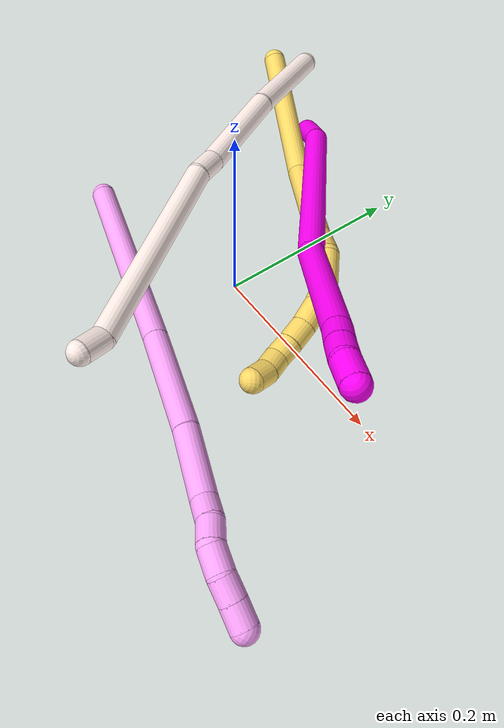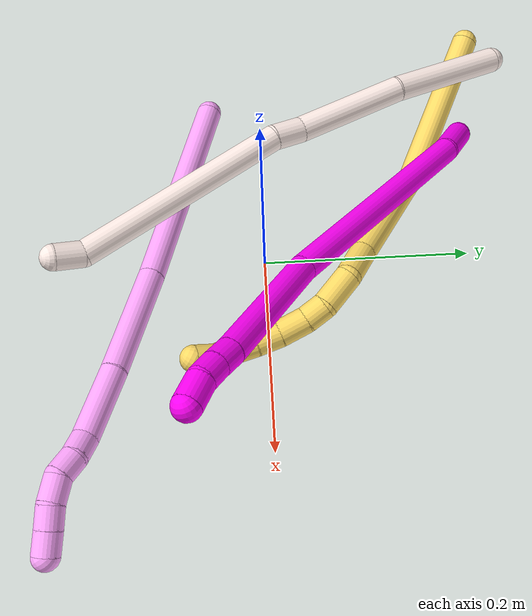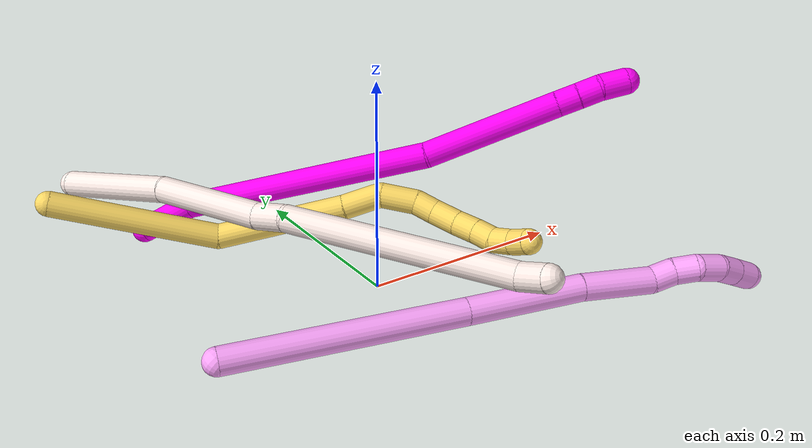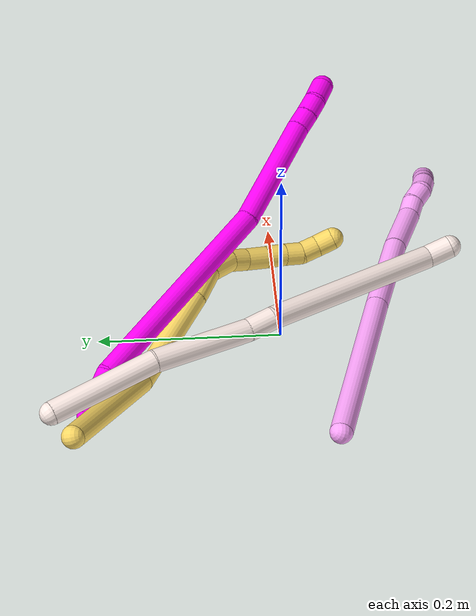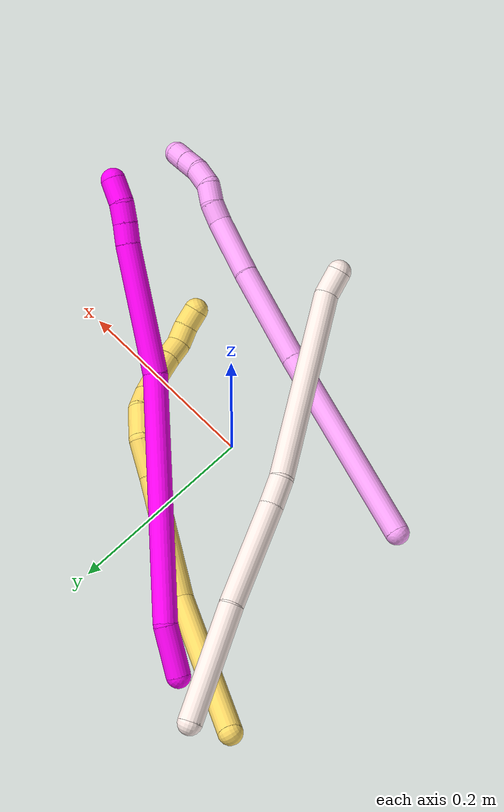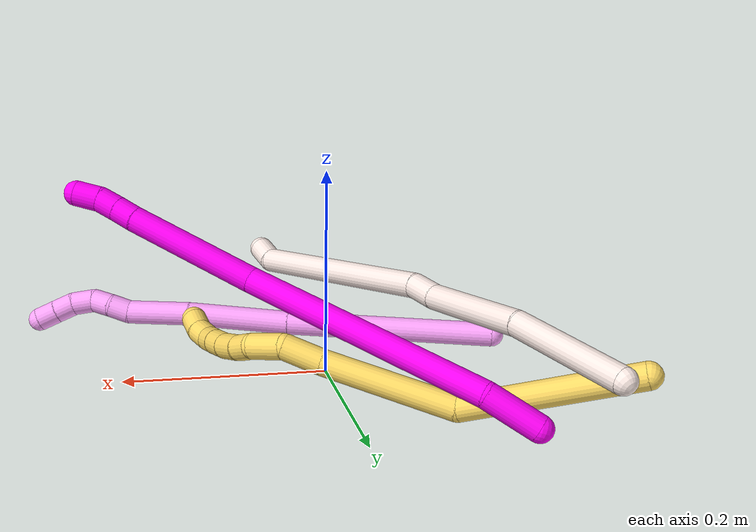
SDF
<sdf version="1.7">
 <world name="default">
  <model name="4">
   <static>0</static>
   <link name="4">
    <collision name="collision-cylinder-e_1_1_4">
     <pose>0.093295 0.011278 0.053296 -0.208542 1.04229 -0.120012</pose>
     <geometry><cylinder><radius>0.0125</radius><length>0.21607</length></cylinder></geometry>
     <surface>
      <friction><ode><mu>1.16</mu><mu2>1.16</mu2><slip1>0</slip1><slip2>0</slip2></ode></friction>
      <contact><ode><kp>1e+06</kp><kd>1</kd><max_vel>0</max_vel><min_depth>0.001</min_depth></ode></contact>
     </surface>
    </collision>
    <visual name="visual-cylinder-e_1_1_4">
     <pose>0.093295 0.011278 0.053296 -0.208542 1.04229 -0.120012</pose>
     <geometry><cylinder><radius>0.0125</radius><length>0.21607</length></cylinder></geometry>
     <material><ambient>1 0.65098 0.996078 1</ambient></material>
    </visual>
    <collision name="collision-cylinder-e_2_4_5">
     <pose>0.232696 0.030049 0.133267 -0.273791 1.02968 -0.155552</pose>
     <geometry><cylinder><radius>0.0125</radius><length>0.107584</length></cylinder></geometry>
     <surface>
      <friction><ode><mu>1.16</mu><mu2>1.16</mu2><slip1>0</slip1><slip2>0</slip2></ode></friction>
      <contact><ode><kp>1e+06</kp><kd>1</kd><max_vel>0</max_vel><min_depth>0.001</min_depth></ode></contact>
     </surface>
    </collision>
    <visual name="visual-cylinder-e_2_4_5">
     <pose>0.232696 0.030049 0.133267 -0.273791 1.02968 -0.155552</pose>
     <geometry><cylinder><radius>0.0125</radius><length>0.107584</length></cylinder></geometry>
     <material><ambient>1 0.65098 0.996078 1</ambient></material>
    </visual>
    <collision name="collision-cylinder-e_3_5_6">
     <pose>0.306263 0.041008 0.17919 -0.178263 0.951941 -0.092073</pose>
     <geometry><cylinder><radius>0.0125</radius><length>0.067424</length></cylinder></geometry>
     <surface>
      <friction><ode><mu>1.16</mu><mu2>1.16</mu2><slip1>0</slip1><slip2>0</slip2></ode></friction>
      <contact><ode><kp>1e+06</kp><kd>1</kd><max_vel>0</max_vel><min_depth>0.001</min_depth></ode></contact>
     </surface>
    </collision>
    <visual name="visual-cylinder-e_3_5_6">
     <pose>0.306263 0.041008 0.17919 -0.178263 0.951941 -0.092073</pose>
     <geometry><cylinder><radius>0.0125</radius><length>0.067424</length></cylinder></geometry>
     <material><ambient>1 0.65098 0.996078 1</ambient></material>
    </visual>
    <collision name="collision-cylinder-e_4_6_7">
     <pose>0.342868 0.048306 0.202809 -0.71936 1.00461 -0.407386</pose>
     <geometry><cylinder><radius>0.0125</radius><length>0.021672</length></cylinder></geometry>
     <surface>
      <friction><ode><mu>1.16</mu><mu2>1.16</mu2><slip1>0</slip1><slip2>0</slip2></ode></friction>
      <contact><ode><kp>1e+06</kp><kd>1</kd><max_vel>0</max_vel><min_depth>0.001</min_depth></ode></contact>
     </surface>
    </collision>
    <visual name="visual-cylinder-e_4_6_7">
     <pose>0.342868 0.048306 0.202809 -0.71936 1.00461 -0.407386</pose>
     <geometry><cylinder><radius>0.0125</radius><length>0.021672</length></cylinder></geometry>
     <material><ambient>1 0.65098 0.996078 1</ambient></material>
    </visual>
    <collision name="collision-cylinder-e_5_7_8">
     <pose>0.359618 0.056099 0.213673 -0.548149 0.785317 -0.231841</pose>
     <geometry><cylinder><radius>0.0125</radius><length>0.021511</length></cylinder></geometry>
     <surface>
      <friction><ode><mu>1.16</mu><mu2>1.16</mu2><slip1>0</slip1><slip2>0</slip2></ode></friction>
      <contact><ode><kp>1e+06</kp><kd>1</kd><max_vel>0</max_vel><min_depth>0.001</min_depth></ode></contact>
     </surface>
    </collision>
    <visual name="visual-cylinder-e_5_7_8">
     <pose>0.359618 0.056099 0.213673 -0.548149 0.785317 -0.231841</pose>
     <geometry><cylinder><radius>0.0125</radius><length>0.021511</length></cylinder></geometry>
     <material><ambient>1 0.65098 0.996078 1</ambient></material>
    </visual>
    <collision name="collision-cylinder-e_6_8_9">
     <pose>0.376875 0.059056 0.226956 0.147217 0.952536 0.076047</pose>
     <geometry><cylinder><radius>0.0125</radius><length>0.02369</length></cylinder></geometry>
     <surface>
      <friction><ode><mu>1.16</mu><mu2>1.16</mu2><slip1>0</slip1><slip2>0</slip2></ode></friction>
      <contact><ode><kp>1e+06</kp><kd>1</kd><max_vel>0</max_vel><min_depth>0.001</min_depth></ode></contact>
     </surface>
    </collision>
    <visual name="visual-cylinder-e_6_8_9">
     <pose>0.376875 0.059056 0.226956 0.147217 0.952536 0.076047</pose>
     <geometry><cylinder><radius>0.0125</radius><length>0.02369</length></cylinder></geometry>
     <material><ambient>1 0.65098 0.996078 1</ambient></material>
    </visual>
    <collision name="collision-cylinder-e_7_9_10">
     <pose>0.394375 0.054414 0.239543 0.560124 0.853819 0.260192</pose>
     <geometry><cylinder><radius>0.0125</radius><length>0.020823</length></cylinder></geometry>
     <surface>
      <friction><ode><mu>1.16</mu><mu2>1.16</mu2><slip1>0</slip1><slip2>0</slip2></ode></friction>
      <contact><ode><kp>1e+06</kp><kd>1</kd><max_vel>0</max_vel><min_depth>0.001</min_depth></ode></contact>
     </surface>
    </collision>
    <visual name="visual-cylinder-e_7_9_10">
     <pose>0.394375 0.054414 0.239543 0.560124 0.853819 0.260192</pose>
     <geometry><cylinder><radius>0.0125</radius><length>0.020823</length></cylinder></geometry>
     <material><ambient>1 0.65098 0.996078 1</ambient></material>
    </visual>
    <collision name="collision-cylinder-e_8_10_2">
     <pose>0.410061 0.047081 0.251465 0.543004 0.830895 0.244373</pose>
     <geometry><cylinder><radius>0.0125</radius><length>0.021227</length></cylinder></geometry>
     <surface>
      <friction><ode><mu>1.16</mu><mu2>1.16</mu2><slip1>0</slip1><slip2>0</slip2></ode></friction>
      <contact><ode><kp>1e+06</kp><kd>1</kd><max_vel>0</max_vel><min_depth>0.001</min_depth></ode></contact>
     </surface>
    </collision>
    <visual name="visual-cylinder-e_8_10_2">
     <pose>0.410061 0.047081 0.251465 0.543004 0.830895 0.244373</pose>
     <geometry><cylinder><radius>0.0125</radius><length>0.021227</length></cylinder></geometry>
     <material><ambient>1 0.65098 0.996078 1</ambient></material>
    </visual>
    <collision name="collision-sphere-2">
     <pose>0.4179 0.043384 0.257592 0 -0 0</pose>
     <geometry><sphere><radius>0.0125</radius></sphere></geometry>
     <surface>
      <friction><ode><mu>1.16</mu><mu2>1.16</mu2><slip1>0</slip1><slip2>0</slip2></ode></friction>
      <contact><ode><kp>1e+06</kp><kd>1</kd><max_vel>0</max_vel><min_depth>0.001</min_depth></ode></contact>
     </surface>
    </collision>
    <visual name="visual-sphere-2">
     <pose>0.4179 0.043384 0.257592 0 -0 0</pose>
     <geometry><sphere><radius>0.0125</radius></sphere></geometry>
     <material><ambient>1 0.65098 0.996078 1</ambient></material>
    </visual>
    <collision name="collision-sphere-10">
     <pose>0.402223 0.050779 0.245339 0 -0 0</pose>
     <geometry><sphere><radius>0.0125</radius></sphere></geometry>
     <surface>
      <friction><ode><mu>1.16</mu><mu2>1.16</mu2><slip1>0</slip1><slip2>0</slip2></ode></friction>
      <contact><ode><kp>1e+06</kp><kd>1</kd><max_vel>0</max_vel><min_depth>0.001</min_depth></ode></contact>
     </surface>
    </collision>
    <visual name="visual-sphere-10">
     <pose>0.402223 0.050779 0.245339 0 -0 0</pose>
     <geometry><sphere><radius>0.0125</radius></sphere></geometry>
     <material><ambient>1 0.65098 0.996078 1</ambient></material>
    </visual>
    <collision name="collision-sphere-9">
     <pose>0.386527 0.058048 0.233747 0 -0 0</pose>
     <geometry><sphere><radius>0.0125</radius></sphere></geometry>
     <surface>
      <friction><ode><mu>1.16</mu><mu2>1.16</mu2><slip1>0</slip1><slip2>0</slip2></ode></friction>
      <contact><ode><kp>1e+06</kp><kd>1</kd><max_vel>0</max_vel><min_depth>0.001</min_depth></ode></contact>
     </surface>
    </collision>
    <visual name="visual-sphere-9">
     <pose>0.386527 0.058048 0.233747 0 -0 0</pose>
     <geometry><sphere><radius>0.0125</radius></sphere></geometry>
     <material><ambient>1 0.65098 0.996078 1</ambient></material>
    </visual>
    <collision name="collision-sphere-4">
     <pose>0.186589 0.022557 0.106591 0 -0 0</pose>
     <geometry><sphere><radius>0.0125</radius></sphere></geometry>
     <surface>
      <friction><ode><mu>1.16</mu><mu2>1.16</mu2><slip1>0</slip1><slip2>0</slip2></ode></friction>
      <contact><ode><kp>1e+06</kp><kd>1</kd><max_vel>0</max_vel><min_depth>0.001</min_depth></ode></contact>
     </surface>
    </collision>
    <visual name="visual-sphere-4">
     <pose>0.186589 0.022557 0.106591 0 -0 0</pose>
     <geometry><sphere><radius>0.0125</radius></sphere></geometry>
     <material><ambient>1 0.65098 0.996078 1</ambient></material>
    </visual>
    <collision name="collision-sphere-1">
     <geometry><sphere><radius>0.0125</radius></sphere></geometry>
     <surface>
      <friction><ode><mu>1.16</mu><mu2>1.16</mu2><slip1>0</slip1><slip2>0</slip2></ode></friction>
      <contact><ode><kp>1e+06</kp><kd>1</kd><max_vel>0</max_vel><min_depth>0.001</min_depth></ode></contact>
     </surface>
    </collision>
    <visual name="visual-sphere-1">
     <geometry><sphere><radius>0.0125</radius></sphere></geometry>
     <material><ambient>1 0.65098 0.996078 1</ambient></material>
    </visual>
    <collision name="collision-sphere-8">
     <pose>0.367222 0.060063 0.220164 0 -0 0</pose>
     <geometry><sphere><radius>0.0125</radius></sphere></geometry>
     <surface>
      <friction><ode><mu>1.16</mu><mu2>1.16</mu2><slip1>0</slip1><slip2>0</slip2></ode></friction>
      <contact><ode><kp>1e+06</kp><kd>1</kd><max_vel>0</max_vel><min_depth>0.001</min_depth></ode></contact>
     </surface>
    </collision>
    <visual name="visual-sphere-8">
     <pose>0.367222 0.060063 0.220164 0 -0 0</pose>
     <geometry><sphere><radius>0.0125</radius></sphere></geometry>
     <material><ambient>1 0.65098 0.996078 1</ambient></material>
    </visual>
    <collision name="collision-sphere-5">
     <pose>0.278803 0.03754 0.159943 0 -0 0</pose>
     <geometry><sphere><radius>0.0125</radius></sphere></geometry>
     <surface>
      <friction><ode><mu>1.16</mu><mu2>1.16</mu2><slip1>0</slip1><slip2>0</slip2></ode></friction>
      <contact><ode><kp>1e+06</kp><kd>1</kd><max_vel>0</max_vel><min_depth>0.001</min_depth></ode></contact>
     </surface>
    </collision>
    <visual name="visual-sphere-5">
     <pose>0.278803 0.03754 0.159943 0 -0 0</pose>
     <geometry><sphere><radius>0.0125</radius></sphere></geometry>
     <material><ambient>1 0.65098 0.996078 1</ambient></material>
    </visual>
    <collision name="collision-sphere-6">
     <pose>0.333723 0.044476 0.198437 0 -0 0</pose>
     <geometry><sphere><radius>0.0125</radius></sphere></geometry>
     <surface>
      <friction><ode><mu>1.16</mu><mu2>1.16</mu2><slip1>0</slip1><slip2>0</slip2></ode></friction>
      <contact><ode><kp>1e+06</kp><kd>1</kd><max_vel>0</max_vel><min_depth>0.001</min_depth></ode></contact>
     </surface>
    </collision>
    <visual name="visual-sphere-6">
     <pose>0.333723 0.044476 0.198437 0 -0 0</pose>
     <geometry><sphere><radius>0.0125</radius></sphere></geometry>
     <material><ambient>1 0.65098 0.996078 1</ambient></material>
    </visual>
    <collision name="collision-sphere-7">
     <pose>0.352013 0.052136 0.207181 0 -0 0</pose>
     <geometry><sphere><radius>0.0125</radius></sphere></geometry>
     <surface>
      <friction><ode><mu>1.16</mu><mu2>1.16</mu2><slip1>0</slip1><slip2>0</slip2></ode></friction>
      <contact><ode><kp>1e+06</kp><kd>1</kd><max_vel>0</max_vel><min_depth>0.001</min_depth></ode></contact>
     </surface>
    </collision>
    <visual name="visual-sphere-7">
     <pose>0.352013 0.052136 0.207181 0 -0 0</pose>
     <geometry><sphere><radius>0.0125</radius></sphere></geometry>
     <material><ambient>1 0.65098 0.996078 1</ambient></material>
    </visual>
    <inertial>
     <pose>0.213705 0.028439 0.125257 0 -0 0</pose>
     <mass>0.5</mass>
     <inertia>
      <ixx>0.000473</ixx>
      <ixy>0</ixy>
      <ixz>0</ixz>
      <iyy>0.000927</iyy>
      <iyz>0</iyz>
      <izz>-0.000942</izz>
     </inertia>
    </inertial>
   </link>
   <pose>-0.187066 -0.05018 0.013441 2.08995 -0.209273 0.227923</pose>
  </model>
  <model name="5">
   <static>0</static>
   <link name="5">
    <collision name="collision-cylinder-e_1_1_4">
     <pose>0.079918 -0.02081 0.002942 1.43035 1.31364 1.18017</pose>
     <geometry><cylinder><radius>0.0125</radius><length>0.165271</length></cylinder></geometry>
     <surface>
      <friction><ode><mu>1.16</mu><mu2>1.16</mu2><slip1>0</slip1><slip2>0</slip2></ode></friction>
      <contact><ode><kp>1e+06</kp><kd>1</kd><max_vel>0</max_vel><min_depth>0.001</min_depth></ode></contact>
     </surface>
    </collision>
    <visual name="visual-cylinder-e_1_1_4">
     <pose>0.079918 -0.02081 0.002942 1.43035 1.31364 1.18017</pose>
     <geometry><cylinder><radius>0.0125</radius><length>0.165271</length></cylinder></geometry>
     <material><ambient>1 0.858824 0.4 1</ambient></material>
    </visual>
    <collision name="collision-cylinder-e_2_4_5">
     <pose>0.208068 -0.081679 -0.008155 1.90789 0.849092 1.13496</pose>
     <geometry><cylinder><radius>0.0125</radius><length>0.1285</length></cylinder></geometry>
     <surface>
      <friction><ode><mu>1.16</mu><mu2>1.16</mu2><slip1>0</slip1><slip2>0</slip2></ode></friction>
      <contact><ode><kp>1e+06</kp><kd>1</kd><max_vel>0</max_vel><min_depth>0.001</min_depth></ode></contact>
     </surface>
    </collision>
    <visual name="visual-cylinder-e_2_4_5">
     <pose>0.208068 -0.081679 -0.008155 1.90789 0.849092 1.13496</pose>
     <geometry><cylinder><radius>0.0125</radius><length>0.1285</length></cylinder></geometry>
     <material><ambient>1 0.858824 0.4 1</ambient></material>
    </visual>
    <collision name="collision-cylinder-e_3_5_6">
     <pose>0.269693 -0.135125 -0.026304 1.86859 0.763117 0.994656</pose>
     <geometry><cylinder><radius>0.0125</radius><length>0.038755</length></cylinder></geometry>
     <surface>
      <friction><ode><mu>1.16</mu><mu2>1.16</mu2><slip1>0</slip1><slip2>0</slip2></ode></friction>
      <contact><ode><kp>1e+06</kp><kd>1</kd><max_vel>0</max_vel><min_depth>0.001</min_depth></ode></contact>
     </surface>
    </collision>
    <visual name="visual-cylinder-e_3_5_6">
     <pose>0.269693 -0.135125 -0.026304 1.86859 0.763117 0.994656</pose>
     <geometry><cylinder><radius>0.0125</radius><length>0.038755</length></cylinder></geometry>
     <material><ambient>1 0.858824 0.4 1</ambient></material>
    </visual>
    <collision name="collision-cylinder-e_4_6_7">
     <pose>0.29991 -0.152922 -0.03492 2.36718 1.21219 2.07799</pose>
     <geometry><cylinder><radius>0.0125</radius><length>0.035932</length></cylinder></geometry>
     <surface>
      <friction><ode><mu>1.16</mu><mu2>1.16</mu2><slip1>0</slip1><slip2>0</slip2></ode></friction>
      <contact><ode><kp>1e+06</kp><kd>1</kd><max_vel>0</max_vel><min_depth>0.001</min_depth></ode></contact>
     </surface>
    </collision>
    <visual name="visual-cylinder-e_4_6_7">
     <pose>0.29991 -0.152922 -0.03492 2.36718 1.21219 2.07799</pose>
     <geometry><cylinder><radius>0.0125</radius><length>0.035932</length></cylinder></geometry>
     <material><ambient>1 0.858824 0.4 1</ambient></material>
    </visual>
    <collision name="collision-cylinder-e_5_7_8">
     <pose>0.326396 -0.156684 -0.043989 -3.00053 1.12591 -2.91863</pose>
     <geometry><cylinder><radius>0.0125</radius><length>0.021409</length></cylinder></geometry>
     <surface>
      <friction><ode><mu>1.16</mu><mu2>1.16</mu2><slip1>0</slip1><slip2>0</slip2></ode></friction>
      <contact><ode><kp>1e+06</kp><kd>1</kd><max_vel>0</max_vel><min_depth>0.001</min_depth></ode></contact>
     </surface>
    </collision>
    <visual name="visual-cylinder-e_5_7_8">
     <pose>0.326396 -0.156684 -0.043989 -3.00053 1.12591 -2.91863</pose>
     <geometry><cylinder><radius>0.0125</radius><length>0.021409</length></cylinder></geometry>
     <material><ambient>1 0.858824 0.4 1</ambient></material>
    </visual>
    <collision name="collision-cylinder-e_6_8_9">
     <pose>0.347075 -0.155518 -0.056263 -3.07446 0.958904 -3.0126</pose>
     <geometry><cylinder><radius>0.0125</radius><length>0.026918</length></cylinder></geometry>
     <surface>
      <friction><ode><mu>1.16</mu><mu2>1.16</mu2><slip1>0</slip1><slip2>0</slip2></ode></friction>
      <contact><ode><kp>1e+06</kp><kd>1</kd><max_vel>0</max_vel><min_depth>0.001</min_depth></ode></contact>
     </surface>
    </collision>
    <visual name="visual-cylinder-e_6_8_9">
     <pose>0.347075 -0.155518 -0.056263 -3.07446 0.958904 -3.0126</pose>
     <geometry><cylinder><radius>0.0125</radius><length>0.026918</length></cylinder></geometry>
     <material><ambient>1 0.858824 0.4 1</ambient></material>
    </visual>
    <collision name="collision-cylinder-e_7_9_10">
     <pose>0.366569 -0.154912 -0.071569 -3.13013 0.840402 -3.11594</pose>
     <geometry><cylinder><radius>0.0125</radius><length>0.022761</length></cylinder></geometry>
     <surface>
      <friction><ode><mu>1.16</mu><mu2>1.16</mu2><slip1>0</slip1><slip2>0</slip2></ode></friction>
      <contact><ode><kp>1e+06</kp><kd>1</kd><max_vel>0</max_vel><min_depth>0.001</min_depth></ode></contact>
     </surface>
    </collision>
    <visual name="visual-cylinder-e_7_9_10">
     <pose>0.366569 -0.154912 -0.071569 -3.13013 0.840402 -3.11594</pose>
     <geometry><cylinder><radius>0.0125</radius><length>0.022761</length></cylinder></geometry>
     <material><ambient>1 0.858824 0.4 1</ambient></material>
    </visual>
    <collision name="collision-cylinder-e_8_10_11">
     <pose>0.382303 -0.154135 -0.086201 -3.04394 0.798176 -2.91088</pose>
     <geometry><cylinder><radius>0.0125</radius><length>0.020267</length></cylinder></geometry>
     <surface>
      <friction><ode><mu>1.16</mu><mu2>1.16</mu2><slip1>0</slip1><slip2>0</slip2></ode></friction>
      <contact><ode><kp>1e+06</kp><kd>1</kd><max_vel>0</max_vel><min_depth>0.001</min_depth></ode></contact>
     </surface>
    </collision>
    <visual name="visual-cylinder-e_8_10_11">
     <pose>0.382303 -0.154135 -0.086201 -3.04394 0.798176 -2.91088</pose>
     <geometry><cylinder><radius>0.0125</radius><length>0.020267</length></cylinder></geometry>
     <material><ambient>1 0.858824 0.4 1</ambient></material>
    </visual>
    <collision name="collision-cylinder-e_9_11_12">
     <pose>0.396206 -0.156042 -0.100247 2.78675 0.726938 2.26057</pose>
     <geometry><cylinder><radius>0.0125</radius><length>0.02</length></cylinder></geometry>
     <surface>
      <friction><ode><mu>1.16</mu><mu2>1.16</mu2><slip1>0</slip1><slip2>0</slip2></ode></friction>
      <contact><ode><kp>1e+06</kp><kd>1</kd><max_vel>0</max_vel><min_depth>0.001</min_depth></ode></contact>
     </surface>
    </collision>
    <visual name="visual-cylinder-e_9_11_12">
     <pose>0.396206 -0.156042 -0.100247 2.78675 0.726938 2.26057</pose>
     <geometry><cylinder><radius>0.0125</radius><length>0.02</length></cylinder></geometry>
     <material><ambient>1 0.858824 0.4 1</ambient></material>
    </visual>
    <collision name="collision-cylinder-e_10_12_2">
     <pose>0.407199 -0.161459 -0.115915 2.82669 0.445261 1.91837</pose>
     <geometry><cylinder><radius>0.0125</radius><length>0.020185</length></cylinder></geometry>
     <surface>
      <friction><ode><mu>1.16</mu><mu2>1.16</mu2><slip1>0</slip1><slip2>0</slip2></ode></friction>
      <contact><ode><kp>1e+06</kp><kd>1</kd><max_vel>0</max_vel><min_depth>0.001</min_depth></ode></contact>
     </surface>
    </collision>
    <visual name="visual-cylinder-e_10_12_2">
     <pose>0.407199 -0.161459 -0.115915 2.82669 0.445261 1.91837</pose>
     <geometry><cylinder><radius>0.0125</radius><length>0.020185</length></cylinder></geometry>
     <material><ambient>1 0.858824 0.4 1</ambient></material>
    </visual>
    <collision name="collision-sphere-2">
     <pose>0.411545 -0.164281 -0.124575 0 -0 0</pose>
     <geometry><sphere><radius>0.0125</radius></sphere></geometry>
     <surface>
      <friction><ode><mu>1.16</mu><mu2>1.16</mu2><slip1>0</slip1><slip2>0</slip2></ode></friction>
      <contact><ode><kp>1e+06</kp><kd>1</kd><max_vel>0</max_vel><min_depth>0.001</min_depth></ode></contact>
     </surface>
    </collision>
    <visual name="visual-sphere-2">
     <pose>0.411545 -0.164281 -0.124575 0 -0 0</pose>
     <geometry><sphere><radius>0.0125</radius></sphere></geometry>
     <material><ambient>1 0.858824 0.4 1</ambient></material>
    </visual>
    <collision name="collision-sphere-12">
     <pose>0.402852 -0.158638 -0.107254 0 -0 0</pose>
     <geometry><sphere><radius>0.0125</radius></sphere></geometry>
     <surface>
      <friction><ode><mu>1.16</mu><mu2>1.16</mu2><slip1>0</slip1><slip2>0</slip2></ode></friction>
      <contact><ode><kp>1e+06</kp><kd>1</kd><max_vel>0</max_vel><min_depth>0.001</min_depth></ode></contact>
     </surface>
    </collision>
    <visual name="visual-sphere-12">
     <pose>0.402852 -0.158638 -0.107254 0 -0 0</pose>
     <geometry><sphere><radius>0.0125</radius></sphere></geometry>
     <material><ambient>1 0.858824 0.4 1</ambient></material>
    </visual>
    <collision name="collision-sphere-11">
     <pose>0.38956 -0.153446 -0.093241 0 -0 0</pose>
     <geometry><sphere><radius>0.0125</radius></sphere></geometry>
     <surface>
      <friction><ode><mu>1.16</mu><mu2>1.16</mu2><slip1>0</slip1><slip2>0</slip2></ode></friction>
      <contact><ode><kp>1e+06</kp><kd>1</kd><max_vel>0</max_vel><min_depth>0.001</min_depth></ode></contact>
     </surface>
    </collision>
    <visual name="visual-sphere-11">
     <pose>0.38956 -0.153446 -0.093241 0 -0 0</pose>
     <geometry><sphere><radius>0.0125</radius></sphere></geometry>
     <material><ambient>1 0.858824 0.4 1</ambient></material>
    </visual>
    <collision name="collision-sphere-10">
     <pose>0.375047 -0.154825 -0.079161 0 -0 0</pose>
     <geometry><sphere><radius>0.0125</radius></sphere></geometry>
     <surface>
      <friction><ode><mu>1.16</mu><mu2>1.16</mu2><slip1>0</slip1><slip2>0</slip2></ode></friction>
      <contact><ode><kp>1e+06</kp><kd>1</kd><max_vel>0</max_vel><min_depth>0.001</min_depth></ode></contact>
     </surface>
    </collision>
    <visual name="visual-sphere-10">
     <pose>0.375047 -0.154825 -0.079161 0 -0 0</pose>
     <geometry><sphere><radius>0.0125</radius></sphere></geometry>
     <material><ambient>1 0.858824 0.4 1</ambient></material>
    </visual>
    <collision name="collision-sphere-9">
     <pose>0.358092 -0.154999 -0.063977 0 -0 0</pose>
     <geometry><sphere><radius>0.0125</radius></sphere></geometry>
     <surface>
      <friction><ode><mu>1.16</mu><mu2>1.16</mu2><slip1>0</slip1><slip2>0</slip2></ode></friction>
      <contact><ode><kp>1e+06</kp><kd>1</kd><max_vel>0</max_vel><min_depth>0.001</min_depth></ode></contact>
     </surface>
    </collision>
    <visual name="visual-sphere-9">
     <pose>0.358092 -0.154999 -0.063977 0 -0 0</pose>
     <geometry><sphere><radius>0.0125</radius></sphere></geometry>
     <material><ambient>1 0.858824 0.4 1</ambient></material>
    </visual>
    <collision name="collision-sphere-4">
     <pose>0.159837 -0.04162 0.005884 0 -0 0</pose>
     <geometry><sphere><radius>0.0125</radius></sphere></geometry>
     <surface>
      <friction><ode><mu>1.16</mu><mu2>1.16</mu2><slip1>0</slip1><slip2>0</slip2></ode></friction>
      <contact><ode><kp>1e+06</kp><kd>1</kd><max_vel>0</max_vel><min_depth>0.001</min_depth></ode></contact>
     </surface>
    </collision>
    <visual name="visual-sphere-4">
     <pose>0.159837 -0.04162 0.005884 0 -0 0</pose>
     <geometry><sphere><radius>0.0125</radius></sphere></geometry>
     <material><ambient>1 0.858824 0.4 1</ambient></material>
    </visual>
    <collision name="collision-sphere-1">
     <geometry><sphere><radius>0.0125</radius></sphere></geometry>
     <surface>
      <friction><ode><mu>1.16</mu><mu2>1.16</mu2><slip1>0</slip1><slip2>0</slip2></ode></friction>
      <contact><ode><kp>1e+06</kp><kd>1</kd><max_vel>0</max_vel><min_depth>0.001</min_depth></ode></contact>
     </surface>
    </collision>
    <visual name="visual-sphere-1">
     <geometry><sphere><radius>0.0125</radius></sphere></geometry>
     <material><ambient>1 0.858824 0.4 1</ambient></material>
    </visual>
    <collision name="collision-sphere-8">
     <pose>0.336058 -0.156036 -0.04855 0 -0 0</pose>
     <geometry><sphere><radius>0.0125</radius></sphere></geometry>
     <surface>
      <friction><ode><mu>1.16</mu><mu2>1.16</mu2><slip1>0</slip1><slip2>0</slip2></ode></friction>
      <contact><ode><kp>1e+06</kp><kd>1</kd><max_vel>0</max_vel><min_depth>0.001</min_depth></ode></contact>
     </surface>
    </collision>
    <visual name="visual-sphere-8">
     <pose>0.336058 -0.156036 -0.04855 0 -0 0</pose>
     <geometry><sphere><radius>0.0125</radius></sphere></geometry>
     <material><ambient>1 0.858824 0.4 1</ambient></material>
    </visual>
    <collision name="collision-sphere-5">
     <pose>0.2563 -0.121738 -0.022195 0 -0 0</pose>
     <geometry><sphere><radius>0.0125</radius></sphere></geometry>
     <surface>
      <friction><ode><mu>1.16</mu><mu2>1.16</mu2><slip1>0</slip1><slip2>0</slip2></ode></friction>
      <contact><ode><kp>1e+06</kp><kd>1</kd><max_vel>0</max_vel><min_depth>0.001</min_depth></ode></contact>
     </surface>
    </collision>
    <visual name="visual-sphere-5">
     <pose>0.2563 -0.121738 -0.022195 0 -0 0</pose>
     <geometry><sphere><radius>0.0125</radius></sphere></geometry>
     <material><ambient>1 0.858824 0.4 1</ambient></material>
    </visual>
    <collision name="collision-sphere-6">
     <pose>0.283087 -0.148513 -0.030413 0 -0 0</pose>
     <geometry><sphere><radius>0.0125</radius></sphere></geometry>
     <surface>
      <friction><ode><mu>1.16</mu><mu2>1.16</mu2><slip1>0</slip1><slip2>0</slip2></ode></friction>
      <contact><ode><kp>1e+06</kp><kd>1</kd><max_vel>0</max_vel><min_depth>0.001</min_depth></ode></contact>
     </surface>
    </collision>
    <visual name="visual-sphere-6">
     <pose>0.283087 -0.148513 -0.030413 0 -0 0</pose>
     <geometry><sphere><radius>0.0125</radius></sphere></geometry>
     <material><ambient>1 0.858824 0.4 1</ambient></material>
    </visual>
    <collision name="collision-sphere-7">
     <pose>0.316733 -0.157332 -0.039428 0 -0 0</pose>
     <geometry><sphere><radius>0.0125</radius></sphere></geometry>
     <surface>
      <friction><ode><mu>1.16</mu><mu2>1.16</mu2><slip1>0</slip1><slip2>0</slip2></ode></friction>
      <contact><ode><kp>1e+06</kp><kd>1</kd><max_vel>0</max_vel><min_depth>0.001</min_depth></ode></contact>
     </surface>
    </collision>
    <visual name="visual-sphere-7">
     <pose>0.316733 -0.157332 -0.039428 0 -0 0</pose>
     <geometry><sphere><radius>0.0125</radius></sphere></geometry>
     <material><ambient>1 0.858824 0.4 1</ambient></material>
    </visual>
    <inertial>
     <pose>0.219478 -0.090474 -0.026026 0 -0 0</pose>
     <mass>0.5</mass>
     <inertia>
      <ixx>0.000322</ixx>
      <ixy>0</ixy>
      <ixz>0</ixz>
      <iyy>0.00066</iyy>
      <iyz>0</iyz>
      <izz>-0.000317</izz>
     </inertia>
    </inertial>
   </link>
   <pose>-0.2311 0.224381 0.058201 -2.0399 0.496788 -0.608656</pose>
  </model>
  <model name="10">
   <static>0</static>
   <link name="10">
    <collision name="collision-cylinder-e_1_1_4">
     <pose>0.022858 -0.010683 0.00776 0.942622 1.04697 0.572165</pose>
     <geometry><cylinder><radius>0.0125</radius><length>0.052796</length></cylinder></geometry>
     <surface>
      <friction><ode><mu>1.16</mu><mu2>1.16</mu2><slip1>0</slip1><slip2>0</slip2></ode></friction>
      <contact><ode><kp>1e+06</kp><kd>1</kd><max_vel>0</max_vel><min_depth>0.001</min_depth></ode></contact>
     </surface>
    </collision>
    <visual name="visual-cylinder-e_1_1_4">
     <pose>0.022858 -0.010683 0.00776 0.942622 1.04697 0.572165</pose>
     <geometry><cylinder><radius>0.0125</radius><length>0.052796</length></cylinder></geometry>
     <material><ambient>1 0 0.964706 1</ambient></material>
    </visual>
    <collision name="collision-cylinder-e_2_4_5">
     <pose>0.135992 -0.102943 0.040693 1.27147 0.813307 0.615411</pose>
     <geometry><cylinder><radius>0.0125</radius><length>0.2485</length></cylinder></geometry>
     <surface>
      <friction><ode><mu>1.16</mu><mu2>1.16</mu2><slip1>0</slip1><slip2>0</slip2></ode></friction>
      <contact><ode><kp>1e+06</kp><kd>1</kd><max_vel>0</max_vel><min_depth>0.001</min_depth></ode></contact>
     </surface>
    </collision>
    <visual name="visual-cylinder-e_2_4_5">
     <pose>0.135992 -0.102943 0.040693 1.27147 0.813307 0.615411</pose>
     <geometry><cylinder><radius>0.0125</radius><length>0.2485</length></cylinder></geometry>
     <material><ambient>1 0 0.964706 1</ambient></material>
    </visual>
    <collision name="collision-cylinder-e_3_5_6">
     <pose>0.281629 -0.217017 0.080236 1.15449 1.00019 0.683759</pose>
     <geometry><cylinder><radius>0.0125</radius><length>0.131568</length></cylinder></geometry>
     <surface>
      <friction><ode><mu>1.16</mu><mu2>1.16</mu2><slip1>0</slip1><slip2>0</slip2></ode></friction>
      <contact><ode><kp>1e+06</kp><kd>1</kd><max_vel>0</max_vel><min_depth>0.001</min_depth></ode></contact>
     </surface>
    </collision>
    <visual name="visual-cylinder-e_3_5_6">
     <pose>0.281629 -0.217017 0.080236 1.15449 1.00019 0.683759</pose>
     <geometry><cylinder><radius>0.0125</radius><length>0.131568</length></cylinder></geometry>
     <material><ambient>1 0 0.964706 1</ambient></material>
    </visual>
    <collision name="collision-cylinder-e_4_6_7">
     <pose>0.345378 -0.255168 0.097461 1.10302 0.923939 0.594461</pose>
     <geometry><cylinder><radius>0.0125</radius><length>0.02102</length></cylinder></geometry>
     <surface>
      <friction><ode><mu>1.16</mu><mu2>1.16</mu2><slip1>0</slip1><slip2>0</slip2></ode></friction>
      <contact><ode><kp>1e+06</kp><kd>1</kd><max_vel>0</max_vel><min_depth>0.001</min_depth></ode></contact>
     </surface>
    </collision>
    <visual name="visual-cylinder-e_4_6_7">
     <pose>0.345378 -0.255168 0.097461 1.10302 0.923939 0.594461</pose>
     <geometry><cylinder><radius>0.0125</radius><length>0.02102</length></cylinder></geometry>
     <material><ambient>1 0 0.964706 1</ambient></material>
    </visual>
    <collision name="collision-cylinder-e_5_7_8">
     <pose>0.362378 -0.266136 0.10287 1.12287 0.970569 0.640517</pose>
     <geometry><cylinder><radius>0.0125</radius><length>0.020874</length></cylinder></geometry>
     <surface>
      <friction><ode><mu>1.16</mu><mu2>1.16</mu2><slip1>0</slip1><slip2>0</slip2></ode></friction>
      <contact><ode><kp>1e+06</kp><kd>1</kd><max_vel>0</max_vel><min_depth>0.001</min_depth></ode></contact>
     </surface>
    </collision>
    <visual name="visual-cylinder-e_5_7_8">
     <pose>0.362378 -0.266136 0.10287 1.12287 0.970569 0.640517</pose>
     <geometry><cylinder><radius>0.0125</radius><length>0.020874</length></cylinder></geometry>
     <material><ambient>1 0 0.964706 1</ambient></material>
    </visual>
    <collision name="collision-cylinder-e_6_8_2">
     <pose>0.382049 -0.277532 0.105399 1.5747 1.0679 1.07132</pose>
     <geometry><cylinder><radius>0.0125</radius><length>0.025243</length></cylinder></geometry>
     <surface>
      <friction><ode><mu>1.16</mu><mu2>1.16</mu2><slip1>0</slip1><slip2>0</slip2></ode></friction>
      <contact><ode><kp>1e+06</kp><kd>1</kd><max_vel>0</max_vel><min_depth>0.001</min_depth></ode></contact>
     </surface>
    </collision>
    <visual name="visual-cylinder-e_6_8_2">
     <pose>0.382049 -0.277532 0.105399 1.5747 1.0679 1.07132</pose>
     <geometry><cylinder><radius>0.0125</radius><length>0.025243</length></cylinder></geometry>
     <material><ambient>1 0 0.964706 1</ambient></material>
    </visual>
    <collision name="collision-sphere-2">
     <pose>0.393108 -0.283615 0.105376 0 -0 0</pose>
     <geometry><sphere><radius>0.0125</radius></sphere></geometry>
     <surface>
      <friction><ode><mu>1.16</mu><mu2>1.16</mu2><slip1>0</slip1><slip2>0</slip2></ode></friction>
      <contact><ode><kp>1e+06</kp><kd>1</kd><max_vel>0</max_vel><min_depth>0.001</min_depth></ode></contact>
     </surface>
    </collision>
    <visual name="visual-sphere-2">
     <pose>0.393108 -0.283615 0.105376 0 -0 0</pose>
     <geometry><sphere><radius>0.0125</radius></sphere></geometry>
     <material><ambient>1 0 0.964706 1</ambient></material>
    </visual>
    <collision name="collision-sphere-4">
     <pose>0.045717 -0.021367 0.015519 0 -0 0</pose>
     <geometry><sphere><radius>0.0125</radius></sphere></geometry>
     <surface>
      <friction><ode><mu>1.16</mu><mu2>1.16</mu2><slip1>0</slip1><slip2>0</slip2></ode></friction>
      <contact><ode><kp>1e+06</kp><kd>1</kd><max_vel>0</max_vel><min_depth>0.001</min_depth></ode></contact>
     </surface>
    </collision>
    <visual name="visual-sphere-4">
     <pose>0.045717 -0.021367 0.015519 0 -0 0</pose>
     <geometry><sphere><radius>0.0125</radius></sphere></geometry>
     <material><ambient>1 0 0.964706 1</ambient></material>
    </visual>
    <collision name="collision-sphere-1">
     <geometry><sphere><radius>0.0125</radius></sphere></geometry>
     <surface>
      <friction><ode><mu>1.16</mu><mu2>1.16</mu2><slip1>0</slip1><slip2>0</slip2></ode></friction>
      <contact><ode><kp>1e+06</kp><kd>1</kd><max_vel>0</max_vel><min_depth>0.001</min_depth></ode></contact>
     </surface>
    </collision>
    <visual name="visual-sphere-1">
     <geometry><sphere><radius>0.0125</radius></sphere></geometry>
     <material><ambient>1 0 0.964706 1</ambient></material>
    </visual>
    <collision name="collision-sphere-8">
     <pose>0.37099 -0.271449 0.105423 0 -0 0</pose>
     <geometry><sphere><radius>0.0125</radius></sphere></geometry>
     <surface>
      <friction><ode><mu>1.16</mu><mu2>1.16</mu2><slip1>0</slip1><slip2>0</slip2></ode></friction>
      <contact><ode><kp>1e+06</kp><kd>1</kd><max_vel>0</max_vel><min_depth>0.001</min_depth></ode></contact>
     </surface>
    </collision>
    <visual name="visual-sphere-8">
     <pose>0.37099 -0.271449 0.105423 0 -0 0</pose>
     <geometry><sphere><radius>0.0125</radius></sphere></geometry>
     <material><ambient>1 0 0.964706 1</ambient></material>
    </visual>
    <collision name="collision-sphere-5">
     <pose>0.226268 -0.184519 0.065867 0 -0 0</pose>
     <geometry><sphere><radius>0.0125</radius></sphere></geometry>
     <surface>
      <friction><ode><mu>1.16</mu><mu2>1.16</mu2><slip1>0</slip1><slip2>0</slip2></ode></friction>
      <contact><ode><kp>1e+06</kp><kd>1</kd><max_vel>0</max_vel><min_depth>0.001</min_depth></ode></contact>
     </surface>
    </collision>
    <visual name="visual-sphere-5">
     <pose>0.226268 -0.184519 0.065867 0 -0 0</pose>
     <geometry><sphere><radius>0.0125</radius></sphere></geometry>
     <material><ambient>1 0 0.964706 1</ambient></material>
    </visual>
    <collision name="collision-sphere-6">
     <pose>0.336991 -0.249515 0.094605 0 -0 0</pose>
     <geometry><sphere><radius>0.0125</radius></sphere></geometry>
     <surface>
      <friction><ode><mu>1.16</mu><mu2>1.16</mu2><slip1>0</slip1><slip2>0</slip2></ode></friction>
      <contact><ode><kp>1e+06</kp><kd>1</kd><max_vel>0</max_vel><min_depth>0.001</min_depth></ode></contact>
     </surface>
    </collision>
    <visual name="visual-sphere-6">
     <pose>0.336991 -0.249515 0.094605 0 -0 0</pose>
     <geometry><sphere><radius>0.0125</radius></sphere></geometry>
     <material><ambient>1 0 0.964706 1</ambient></material>
    </visual>
    <collision name="collision-sphere-7">
     <pose>0.353765 -0.260822 0.100317 0 -0 0</pose>
     <geometry><sphere><radius>0.0125</radius></sphere></geometry>
     <surface>
      <friction><ode><mu>1.16</mu><mu2>1.16</mu2><slip1>0</slip1><slip2>0</slip2></ode></friction>
      <contact><ode><kp>1e+06</kp><kd>1</kd><max_vel>0</max_vel><min_depth>0.001</min_depth></ode></contact>
     </surface>
    </collision>
    <visual name="visual-sphere-7">
     <pose>0.353765 -0.260822 0.100317 0 -0 0</pose>
     <geometry><sphere><radius>0.0125</radius></sphere></geometry>
     <material><ambient>1 0 0.964706 1</ambient></material>
    </visual>
    <inertial>
     <pose>0.193044 -0.145245 0.05587 0 -0 0</pose>
     <mass>0.5</mass>
     <inertia>
      <ixx>0.001427</ixx>
      <ixy>0</ixy>
      <ixz>0</ixz>
      <iyy>0.001561</iyy>
      <iyz>0</iyz>
      <izz>-0.000158</izz>
     </inertia>
    </inertial>
   </link>
   <pose>-0.14357 0.211087 0.0115 0.290019 -0.376611 0.073262</pose>
  </model>
  <model name="11">
   <static>0</static>
   <link name="11">
    <collision name="collision-cylinder-e_1_1_4">
     <pose>0.002746 -0.016305 -0.057705 2.86621 0.045759 0.327327</pose>
     <geometry><cylinder><radius>0.0125</radius><length>0.120055</length></cylinder></geometry>
     <surface>
      <friction><ode><mu>1.16</mu><mu2>1.16</mu2><slip1>0</slip1><slip2>0</slip2></ode></friction>
      <contact><ode><kp>1e+06</kp><kd>1</kd><max_vel>0</max_vel><min_depth>0.001</min_depth></ode></contact>
     </surface>
    </collision>
    <visual name="visual-cylinder-e_1_1_4">
     <pose>0.002746 -0.016305 -0.057705 2.86621 0.045759 0.327327</pose>
     <geometry><cylinder><radius>0.0125</radius><length>0.120055</length></cylinder></geometry>
     <material><ambient>1 0.933333 0.909804 1</ambient></material>
    </visual>
    <collision name="collision-cylinder-e_2_4_5">
     <pose>0.012572 -0.05508 -0.165154 2.71732 0.128997 0.582704</pose>
     <geometry><cylinder><radius>0.0125</radius><length>0.110079</length></cylinder></geometry>
     <surface>
      <friction><ode><mu>1.16</mu><mu2>1.16</mu2><slip1>0</slip1><slip2>0</slip2></ode></friction>
      <contact><ode><kp>1e+06</kp><kd>1</kd><max_vel>0</max_vel><min_depth>0.001</min_depth></ode></contact>
     </surface>
    </collision>
    <visual name="visual-cylinder-e_2_4_5">
     <pose>0.012572 -0.05508 -0.165154 2.71732 0.128997 0.582704</pose>
     <geometry><cylinder><radius>0.0125</radius><length>0.110079</length></cylinder></geometry>
     <material><ambient>1 0.933333 0.909804 1</ambient></material>
    </visual>
    <collision name="collision-cylinder-e_3_5_6">
     <pose>0.020547 -0.08148 -0.229279 2.87478 0.059926 0.439454</pose>
     <geometry><cylinder><radius>0.0125</radius><length>0.029873</length></cylinder></geometry>
     <surface>
      <friction><ode><mu>1.16</mu><mu2>1.16</mu2><slip1>0</slip1><slip2>0</slip2></ode></friction>
      <contact><ode><kp>1e+06</kp><kd>1</kd><max_vel>0</max_vel><min_depth>0.001</min_depth></ode></contact>
     </surface>
    </collision>
    <visual name="visual-cylinder-e_3_5_6">
     <pose>0.020547 -0.08148 -0.229279 2.87478 0.059926 0.439454</pose>
     <geometry><cylinder><radius>0.0125</radius><length>0.029873</length></cylinder></geometry>
     <material><ambient>1 0.933333 0.909804 1</ambient></material>
    </visual>
    <collision name="collision-cylinder-e_4_6_7">
     <pose>0.023575 -0.138449 -0.335642 2.61854 0.020097 0.075052</pose>
     <geometry><cylinder><radius>0.0125</radius><length>0.212396</length></cylinder></geometry>
     <surface>
      <friction><ode><mu>1.16</mu><mu2>1.16</mu2><slip1>0</slip1><slip2>0</slip2></ode></friction>
      <contact><ode><kp>1e+06</kp><kd>1</kd><max_vel>0</max_vel><min_depth>0.001</min_depth></ode></contact>
     </surface>
    </collision>
    <visual name="visual-cylinder-e_4_6_7">
     <pose>0.023575 -0.138449 -0.335642 2.61854 0.020097 0.075052</pose>
     <geometry><cylinder><radius>0.0125</radius><length>0.212396</length></cylinder></geometry>
     <material><ambient>1 0.933333 0.909804 1</ambient></material>
    </visual>
    <collision name="collision-cylinder-e_5_7_2">
     <pose>0.027963 -0.192837 -0.441168 3.04225 0.164059 2.05389</pose>
     <geometry><cylinder><radius>0.0125</radius><length>0.027597</length></cylinder></geometry>
     <surface>
      <friction><ode><mu>1.16</mu><mu2>1.16</mu2><slip1>0</slip1><slip2>0</slip2></ode></friction>
      <contact><ode><kp>1e+06</kp><kd>1</kd><max_vel>0</max_vel><min_depth>0.001</min_depth></ode></contact>
     </surface>
    </collision>
    <visual name="visual-cylinder-e_5_7_2">
     <pose>0.027963 -0.192837 -0.441168 3.04225 0.164059 2.05389</pose>
     <geometry><cylinder><radius>0.0125</radius><length>0.027597</length></cylinder></geometry>
     <material><ambient>1 0.933333 0.909804 1</ambient></material>
    </visual>
    <collision name="collision-sphere-2">
     <pose>0.030217 -0.194187 -0.454714 0 -0 0</pose>
     <geometry><sphere><radius>0.0125</radius></sphere></geometry>
     <surface>
      <friction><ode><mu>1.16</mu><mu2>1.16</mu2><slip1>0</slip1><slip2>0</slip2></ode></friction>
      <contact><ode><kp>1e+06</kp><kd>1</kd><max_vel>0</max_vel><min_depth>0.001</min_depth></ode></contact>
     </surface>
    </collision>
    <visual name="visual-sphere-2">
     <pose>0.030217 -0.194187 -0.454714 0 -0 0</pose>
     <geometry><sphere><radius>0.0125</radius></sphere></geometry>
     <material><ambient>1 0.933333 0.909804 1</ambient></material>
    </visual>
    <collision name="collision-sphere-7">
     <pose>0.025709 -0.191487 -0.427622 0 -0 0</pose>
     <geometry><sphere><radius>0.0125</radius></sphere></geometry>
     <surface>
      <friction><ode><mu>1.16</mu><mu2>1.16</mu2><slip1>0</slip1><slip2>0</slip2></ode></friction>
      <contact><ode><kp>1e+06</kp><kd>1</kd><max_vel>0</max_vel><min_depth>0.001</min_depth></ode></contact>
     </surface>
    </collision>
    <visual name="visual-sphere-7">
     <pose>0.025709 -0.191487 -0.427622 0 -0 0</pose>
     <geometry><sphere><radius>0.0125</radius></sphere></geometry>
     <material><ambient>1 0.933333 0.909804 1</ambient></material>
    </visual>
    <collision name="collision-sphere-6">
     <pose>0.021441 -0.085411 -0.243661 0 -0 0</pose>
     <geometry><sphere><radius>0.0125</radius></sphere></geometry>
     <surface>
      <friction><ode><mu>1.16</mu><mu2>1.16</mu2><slip1>0</slip1><slip2>0</slip2></ode></friction>
      <contact><ode><kp>1e+06</kp><kd>1</kd><max_vel>0</max_vel><min_depth>0.001</min_depth></ode></contact>
     </surface>
    </collision>
    <visual name="visual-sphere-6">
     <pose>0.021441 -0.085411 -0.243661 0 -0 0</pose>
     <geometry><sphere><radius>0.0125</radius></sphere></geometry>
     <material><ambient>1 0.933333 0.909804 1</ambient></material>
    </visual>
    <collision name="collision-sphere-5">
     <pose>0.019652 -0.077549 -0.214897 0 -0 0</pose>
     <geometry><sphere><radius>0.0125</radius></sphere></geometry>
     <surface>
      <friction><ode><mu>1.16</mu><mu2>1.16</mu2><slip1>0</slip1><slip2>0</slip2></ode></friction>
      <contact><ode><kp>1e+06</kp><kd>1</kd><max_vel>0</max_vel><min_depth>0.001</min_depth></ode></contact>
     </surface>
    </collision>
    <visual name="visual-sphere-5">
     <pose>0.019652 -0.077549 -0.214897 0 -0 0</pose>
     <geometry><sphere><radius>0.0125</radius></sphere></geometry>
     <material><ambient>1 0.933333 0.909804 1</ambient></material>
    </visual>
    <collision name="collision-sphere-1">
     <geometry><sphere><radius>0.0125</radius></sphere></geometry>
     <surface>
      <friction><ode><mu>1.16</mu><mu2>1.16</mu2><slip1>0</slip1><slip2>0</slip2></ode></friction>
      <contact><ode><kp>1e+06</kp><kd>1</kd><max_vel>0</max_vel><min_depth>0.001</min_depth></ode></contact>
     </surface>
    </collision>
    <visual name="visual-sphere-1">
     <geometry><sphere><radius>0.0125</radius></sphere></geometry>
     <material><ambient>1 0.933333 0.909804 1</ambient></material>
    </visual>
    <collision name="collision-sphere-4">
     <pose>0.005492 -0.032611 -0.115411 0 -0 0</pose>
     <geometry><sphere><radius>0.0125</radius></sphere></geometry>
     <surface>
      <friction><ode><mu>1.16</mu><mu2>1.16</mu2><slip1>0</slip1><slip2>0</slip2></ode></friction>
      <contact><ode><kp>1e+06</kp><kd>1</kd><max_vel>0</max_vel><min_depth>0.001</min_depth></ode></contact>
     </surface>
    </collision>
    <visual name="visual-sphere-4">
     <pose>0.005492 -0.032611 -0.115411 0 -0 0</pose>
     <geometry><sphere><radius>0.0125</radius></sphere></geometry>
     <material><ambient>1 0.933333 0.909804 1</ambient></material>
    </visual>
    <inertial>
     <pose>0.016213 -0.090365 -0.230841 0 -0 0</pose>
     <mass>0.5</mass>
     <inertia>
      <ixx>0.00122</ixx>
      <ixy>0</ixy>
      <ixz>0</ixz>
      <iyy>-0.000757</iyy>
      <iyz>0</iyz>
      <izz>0.000418</izz>
     </inertia>
    </inertial>
   </link>
   <pose>-0.198318 0.246429 0.063163 2.04306 0.368437 -2.56214</pose>
  </model>
 </world>
</sdf>
